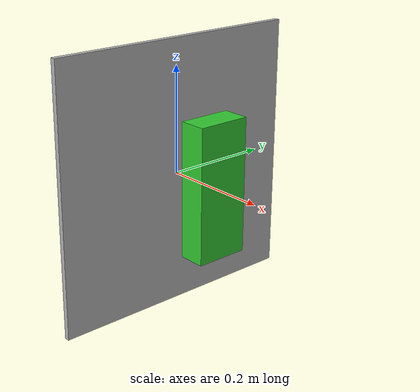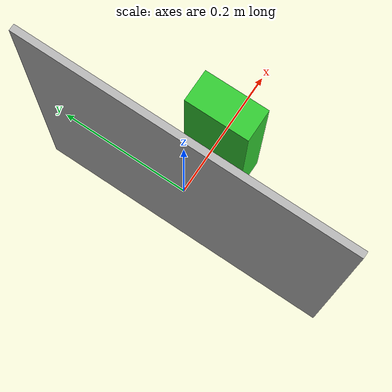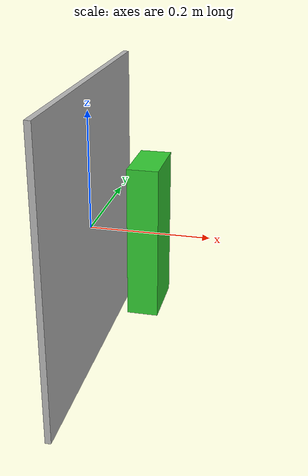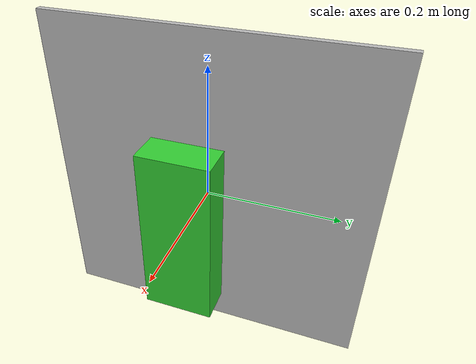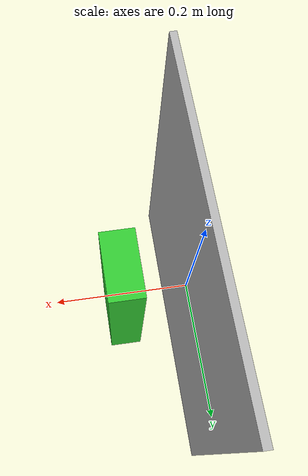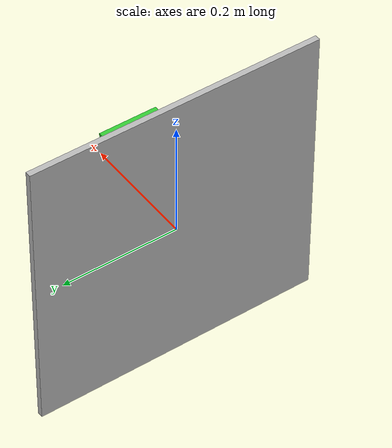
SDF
?xml version="1.0" ?>
<sdf version="1.7">
  <world name="default">
    <plugin
      filename="ignition-gazebo-physics-system"
      name="ignition::gazebo::systems::Physics">
    </plugin>
    <plugin
      filename="ignition-gazebo-scene-broadcaster-system"
      name="ignition::gazebo::systems::SceneBroadcaster">
    </plugin>

    <gui fullscreen="0">

      <!-- 3D scene -->
      <plugin filename="GzScene3D" name="3D View">
        <ignition-gui>
          <title>3D View</title>
          <property type="bool" key="showTitleBar">false</property>
          <property type="string" key="state">docked</property>
        </ignition-gui>

        <engine>ogre</engine>
        <scene>scene</scene>
        <ambient_light>0.4 0.4 0.4</ambient_light>
        <background_color>0.8 0.8 0.8</background_color>
        <camera_pose>1 0 0.1 0 0.05 3.14</camera_pose>
      </plugin>

      <!-- World control -->
      <plugin filename="WorldControl" name="World control">
        <ignition-gui>
          <title>World control</title>
          <property type="bool" key="showTitleBar">false</property>
          <property type="bool" key="resizable">false</property>
          <property type="double" key="height">72</property>
          <property type="double" key="width">121</property>
          <property type="double" key="z">1</property>

          <property type="string" key="state">floating</property>
          <anchors target="3D View">
            <line own="left" target="left"/>
            <line own="bottom" target="bottom"/>
          </anchors>
        </ignition-gui>

        <play_pause>true</play_pause>
        <step>true</step>
        <start_paused>true</start_paused>

      </plugin>
    </gui>
    <light type="directional" name="sun">
      <cast_shadows>true</cast_shadows>
      <pose>0 0 10 0 0 0</pose>
      <diffuse>1 1 1 1</diffuse>
      <specular>0.5 0.5 0.5 1</specular>
      <attenuation>
        <range>1000</range>
        <constant>0.9</constant>
        <linear>0.01</linear>
        <quadratic>0.001</quadratic>
      </attenuation>
      <direction>-0.5 0.1 -0.9</direction>
    </light>
    <model name="joint_position_controller_demo">
      <pose>0 0 0 0 1.57 0</pose>
      <link name="base_link">
        <pose>0.0 0.0 0.0 0 0 0</pose>
        <inertial>
          <inertia>
            <ixx>2.501</ixx>
            <ixy>0</ixy>
            <ixz>0</ixz>
            <iyy>2.501</iyy>
            <iyz>0</iyz>
            <izz>5</izz>
          </inertia>
          <mass>120.0</mass>
        </inertial>
        <visual name="base_visual">
          <pose>0.0 0.0 0.0 0 0 0</pose>
          <geometry>
            <box>
              <size>0.5 0.5 0.01</size>
            </box>
          </geometry>
        </visual>
        <collision name="base_collision">
          <pose>0.0 0.0 0.0 0 0 0</pose>
          <geometry>
            <box>
              <size>0.5 0.5 0.01</size>
            </box>
          </geometry>
        </collision>
      </link>
      <link name="rotor">
        <pose>0.0 0.0 0.1 0 0 0</pose>
        <inertial>
          <inertia>
            <ixx>0.032</ixx>
            <ixy>0</ixy>
            <ixz>0</ixz>
            <iyy>0.032</iyy>
            <iyz>0</iyz>
            <izz>0.00012</izz>
          </inertia>
          <mass>0.6</mass>
        </inertial>
        <visual name="visual">
          <geometry>
            <box>
              <size>0.25 0.1 0.05</size>
            </box>
          </geometry>
          <material>
            <ambient>0.2 0.8 0.2 1</ambient>
          </material>
        </visual>
        <collision name="collision">
          <geometry>
            <box>
              <size>0.25 0.1 0.05</size>
            </box>
          </geometry>
        </collision>
      </link>

      <joint name="world_fixed" type="fixed">
        <parent>world</parent>
        <child>base_link</child>
      </joint>

      <joint name="j1" type="revolute">
        <pose>0 0 -0.5 0 0 0</pose>
        <parent>base_link</parent>
        <child>rotor</child>
        <axis>
          <xyz>0 0 1</xyz>
          <dynamics>
            <damping>0.5</damping>
          </dynamics>
        </axis>
      </joint>
      <plugin
        filename="ignition-gazebo-joint-position-controller-system"
        name="ignition::gazebo::systems::JointPositionController">
        <joint_name>j1</joint_name>
        <topic>rotor_cmd</topic>
        <p_gain>1</p_gain>
        <i_gain>0.1</i_gain>
        <d_gain>0.01</d_gain>
        <i_max>1</i_max>
        <i_min>-1</i_min>
        <cmd_max>1000</cmd_max>
        <cmd_min>-1000</cmd_min>
      </plugin>
    </model>
  </world>
</sdf>
